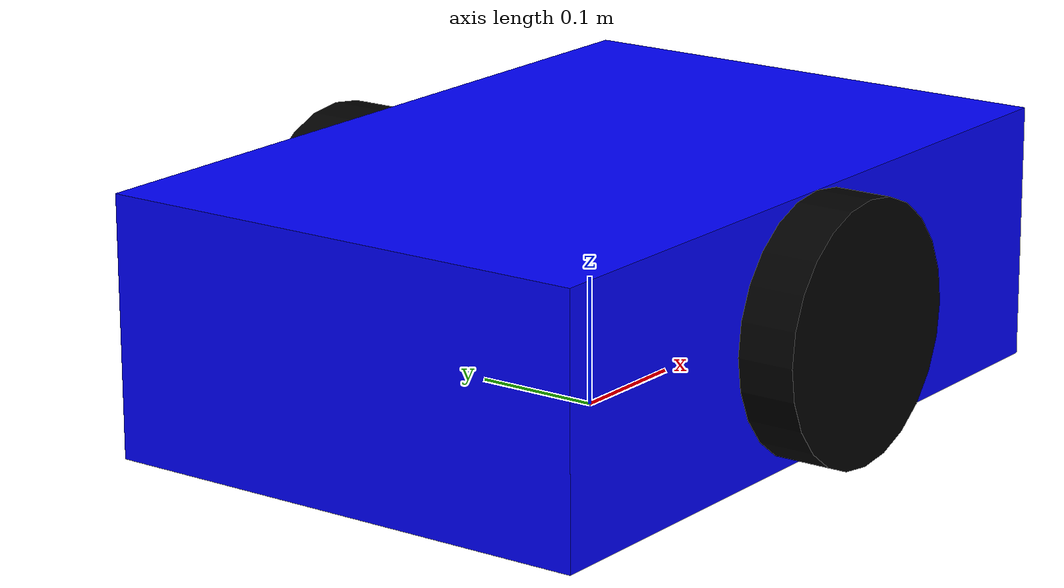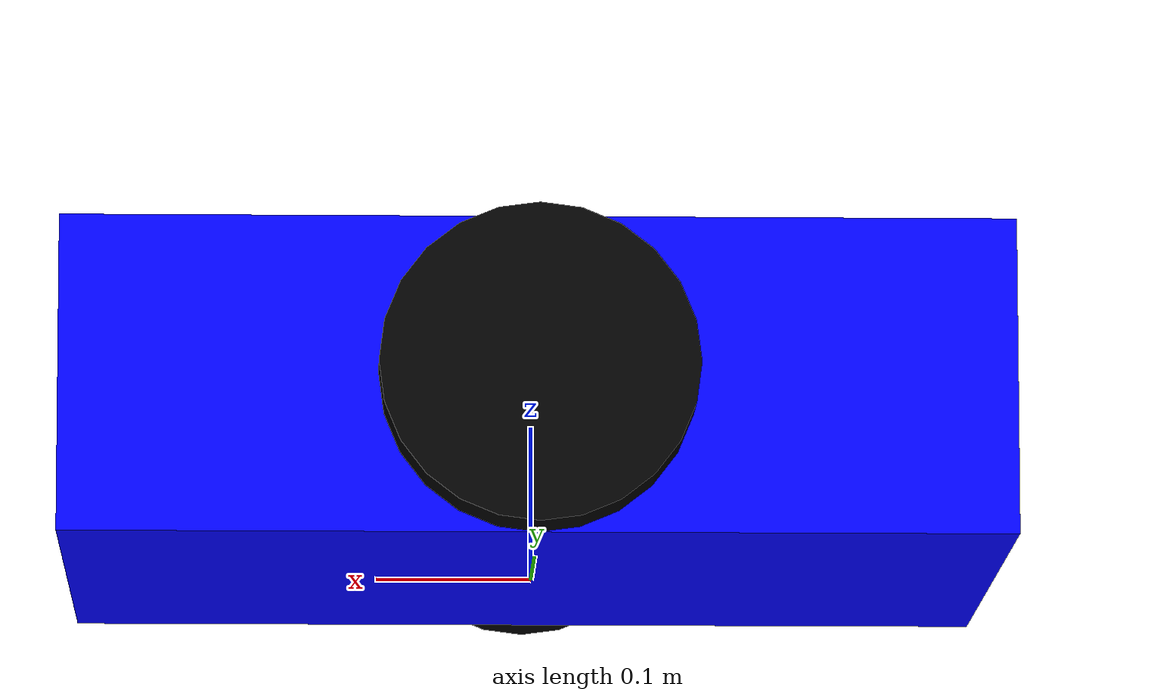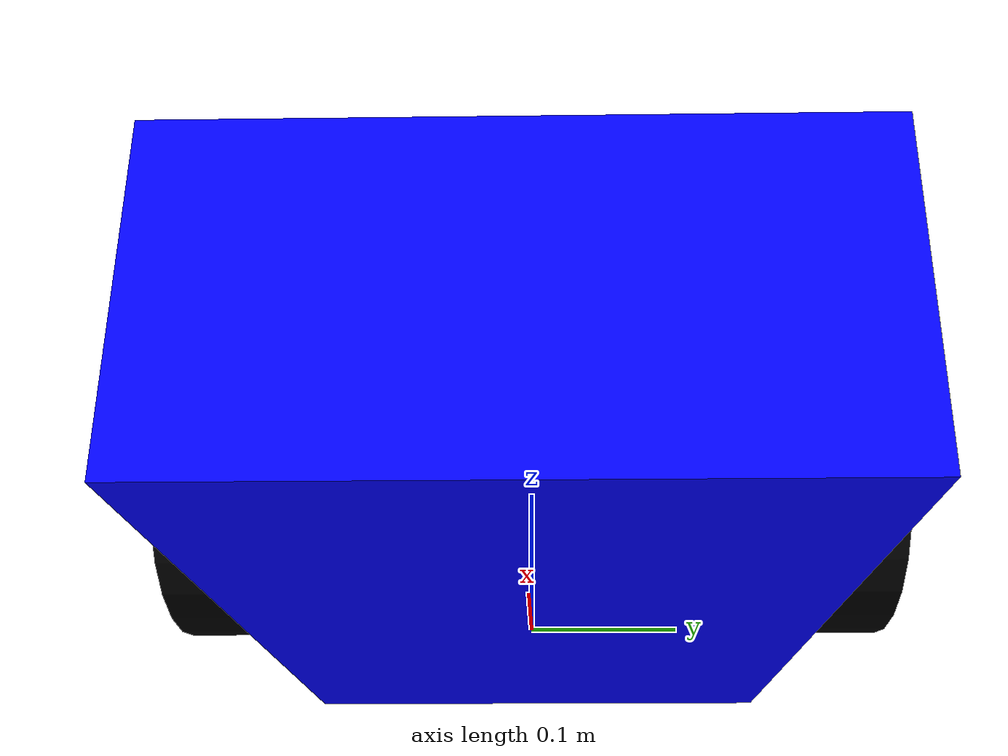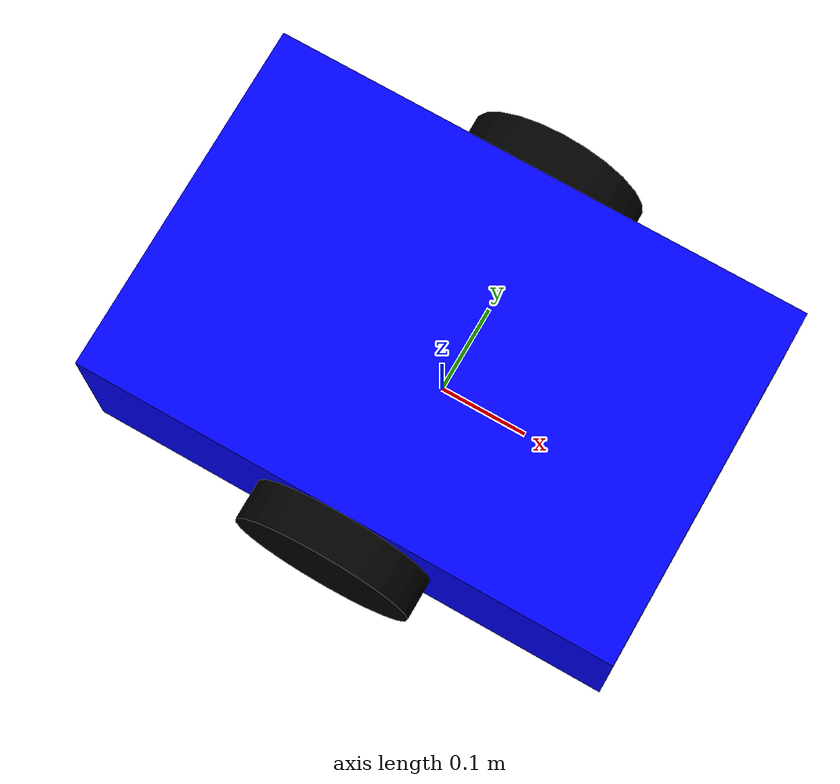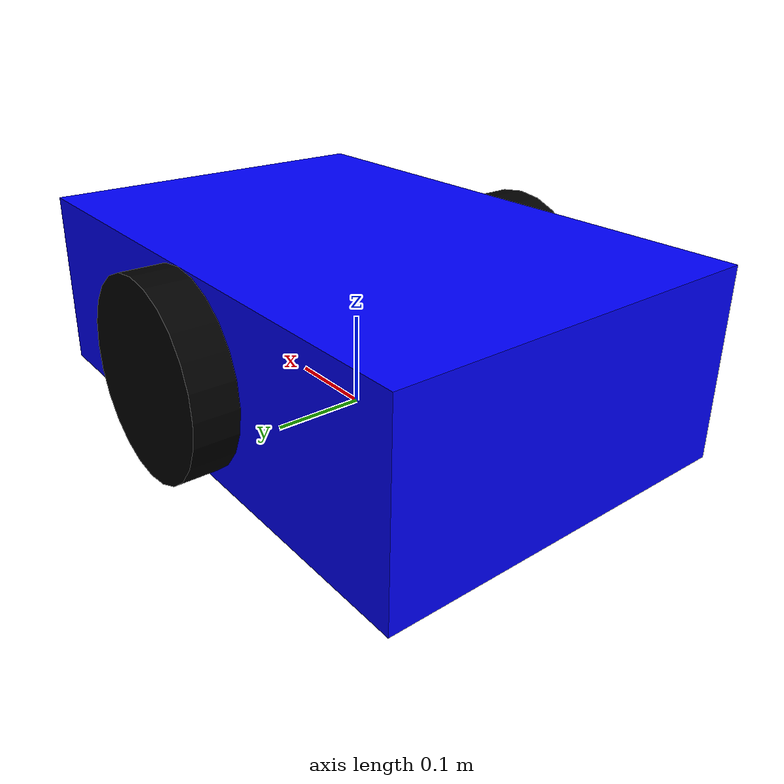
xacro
<?xml version="1.0"?>
<robot xmlns:xacro="http://www.ros.org/wiki/xacro" name="amr_1">

  <!-- Base Link -->
  <link name="base_footprint"/>

  <joint name="base_joint" type="fixed">
    <parent link="base_footprint"/>
    <child link="base_link"/>
    <origin xyz="0 0 0.1" rpy="0 0 0"/>
  </joint>

  <link name="base_link">
    <visual>
      <geometry>
        <box size="0.6 0.4 0.2"/>
      </geometry>
      <material name="blue">
        <color rgba="0.0 0.0 1.0 1.0"/>
      </material>
    </visual>
    <collision>
      <geometry>
        <box size="0.6 0.4 0.2"/>
      </geometry>
    </collision>
    <inertial>
      <mass value="5.0"/>
      <origin xyz="0 0 0"/>
      <inertia ixx="0.083" ixy="0.0" ixz="0.0" iyy="0.166" iyz="0.0" izz="0.216"/>
    </inertial>
  </link>

  <!-- Left Wheel -->
  <joint name="left_wheel_joint" type="continuous">
    <parent link="base_link"/>
    <child link="left_wheel"/>
    <origin xyz="0 0.22 0" rpy="-1.5708 0 0"/>
    <axis xyz="0 0 1"/>
  </joint>

  <link name="left_wheel">
    <visual>
      <geometry>
        <cylinder radius="0.1" length="0.05"/>
      </geometry>
      <material name="black">
        <color rgba="0.0 0.0 0.0 1.0"/>
      </material>
    </visual>
    <collision>
      <geometry>
        <cylinder radius="0.1" length="0.05"/>
      </geometry>
    </collision>
    <inertial>
      <mass value="1.0"/>
      <inertia ixx="0.0027" ixy="0.0" ixz="0.0" iyy="0.0027" iyz="0.0" izz="0.005"/>
    </inertial>
  </link>

  <!-- Right Wheel -->
  <joint name="right_wheel_joint" type="continuous">
    <parent link="base_link"/>
    <child link="right_wheel"/>
    <origin xyz="0 -0.22 0" rpy="-1.5708 0 0"/>
    <axis xyz="0 0 1"/>
  </joint>

  <link name="right_wheel">
    <visual>
      <geometry>
        <cylinder radius="0.1" length="0.05"/>
      </geometry>
      <material name="black">
        <color rgba="0.0 0.0 0.0 1.0"/>
      </material>
    </visual>
    <collision>
      <geometry>
        <cylinder radius="0.1" length="0.05"/>
      </geometry>
    </collision>
    <inertial>
      <mass value="1.0"/>
      <inertia ixx="0.0027" ixy="0.0" ixz="0.0" iyy="0.0027" iyz="0.0" izz="0.005"/>
    </inertial>
  </link>

  <!-- Front Caster Wheel -->
  <joint name="caster_joint" type="fixed">
    <parent link="base_link"/>
    <child link="caster_wheel"/>
    <origin xyz="0.2 0 -0.05" rpy="0 0 0"/>
  </joint>

  <link name="caster_wheel">
    <visual>
      <geometry>
        <sphere radius="0.05"/>
      </geometry>
    </visual>
    <collision>
      <geometry>
        <sphere radius="0.05"/>
      </geometry>
    </collision>
    <inertial>
      <mass value="0.2"/>
      <inertia ixx="0.0002" ixy="0.0" ixz="0.0" iyy="0.0002" iyz="0.0" izz="0.0002"/>
    </inertial>
  </link>

  <!-- Gazebo Friction Properties -->
  <gazebo reference="left_wheel">
    <mu1 value="1.0"/>
    <mu2 value="1.0"/>
  </gazebo>
  <gazebo reference="right_wheel">
    <mu1 value="1.0"/>
    <mu2 value="1.0"/>
  </gazebo>
  <gazebo reference="caster_wheel">
    <mu1 value="0.0"/>
    <mu2 value="0.0"/>
  </gazebo>
  <gazebo reference="base_link">
    <material>Gazebo/Blue</material>
  </gazebo>

  <!-- Diff Drive Plugin -->
  <gazebo>
    <plugin name="amr_1_diff_drive" filename="libgazebo_ros_diff_drive.so">
      <ros>
        <namespace>/amr_1</namespace>
        <remapping>cmd_vel:=cmd_vel</remapping>
        <remapping>odom:=odom</remapping>
      </ros>

      <update_rate>30</update_rate>
      <left_joint>left_wheel_joint</left_joint>
      <right_joint>right_wheel_joint</right_joint>

      <wheel_separation>0.44</wheel_separation>
      <wheel_diameter>0.2</wheel_diameter>

      <max_wheel_torque>50</max_wheel_torque>
      <max_wheel_acceleration>2.0</max_wheel_acceleration>

      <publish_odom>true</publish_odom>
      <publish_odom_tf>true</publish_odom_tf>
      <publish_wheel_tf>false</publish_wheel_tf>

      <odometry_frame>amr_1/odom</odometry_frame>
      <robot_base_frame>amr_1/base_footprint</robot_base_frame>
    </plugin>
  </gazebo>

</robot>
